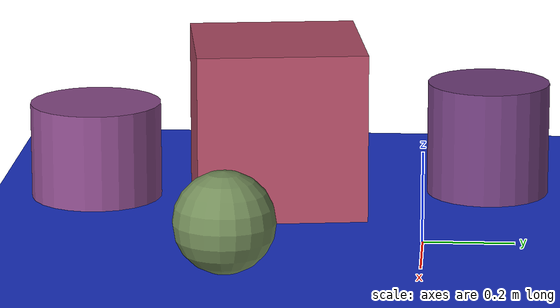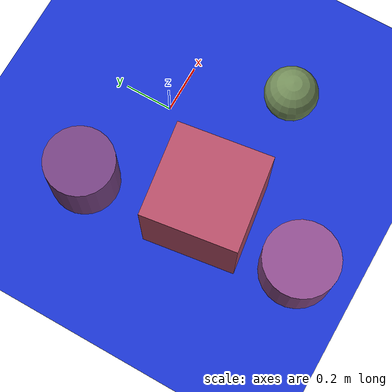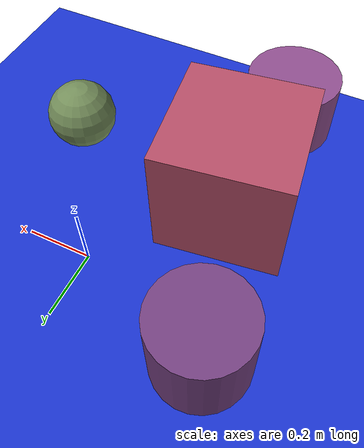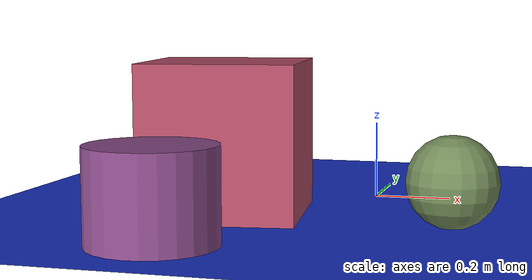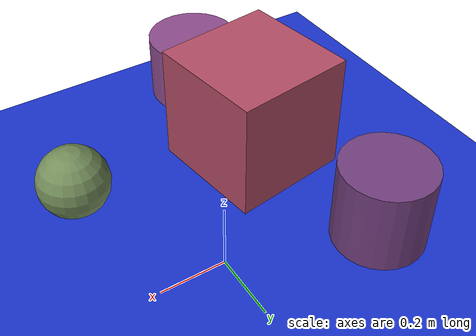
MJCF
<mujoco>
   <asset>
<texture type="skybox" builtin="gradient" rgb1="0.7 1.0 0.1" rgb2="0.4 1.0 1.0" width="256" height="256"/>
<texture name="gradient_0" builtin="gradient" rgb1="0.2 0.8 0.6" rgb2="0.7 0.3 0.1" width="200" height="200"/>
<texture name="flat_1" builtin="flat" rgb1="0.7 0.3 0.4" rgb2="0.7 0.3 0.4"  width="200" height="200"/>
<texture name="gradient_2" builtin="gradient" rgb1="0.2 0.0 1.0" rgb2="0.9 0.6 0.1" width="200" height="200"/>
<texture name="gradient_3" builtin="gradient" rgb1="0.4 0.3 0.7" rgb2="0.5 0.2 0.3" width="200" height="200"/><material name="gradient_0_mat" reflectance="0" texture="gradient_0" texuniform="true"/>
<material name="flat_1_mat" reflectance="0" texture="flat_1" texuniform="true"/>
<material name="gradient_2_mat" reflectance="0" texture="gradient_2" texuniform="true"/>
<material name="gradient_3_mat" reflectance="0" texture="gradient_3" texuniform="true"/>
   </asset>

   <worldbody>
      <light diffuse=".9 .9 .9" pos="0 0 3" dir="0 0 -1"/>
     <geom type="plane" size="1 1 0.1" rgba="0.1 0.2 0.8 1"/>
<geom type="sphere" pos="0.26 -0.41 0.11" size="0.11 0.11 0.11" material="gradient_0_mat" euler="0 0 18" />
<geom type="box" pos="-0.31 -0.34 0.19" size="0.19 0.19 0.19" material="flat_1_mat" euler="0 0 8" />
<geom type="cylinder" pos="-0.34 -0.76 0.11" size="0.15 0.11 0.11" material="gradient_2_mat" euler="0 0 27" />
<geom type="cylinder" pos="-0.43 0.14 0.13" size="0.14 0.13 0.13" material="gradient_3_mat" euler="0 0 87" /><camera euler="60 0 180" fovy="60" name="camera1" pos="-0.2 -1.5 1"></camera>   </worldbody>
</mujoco>
